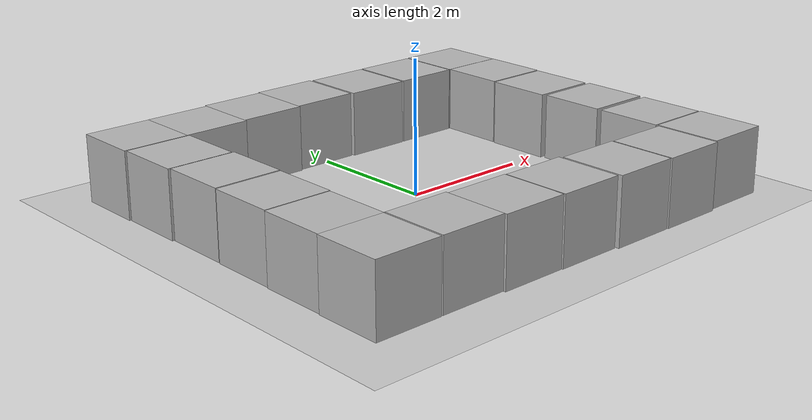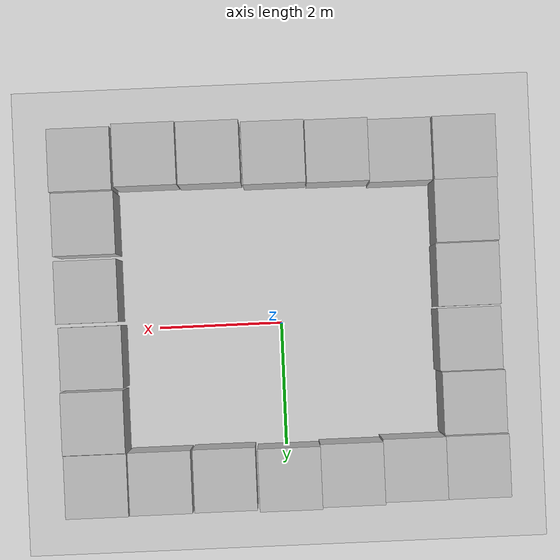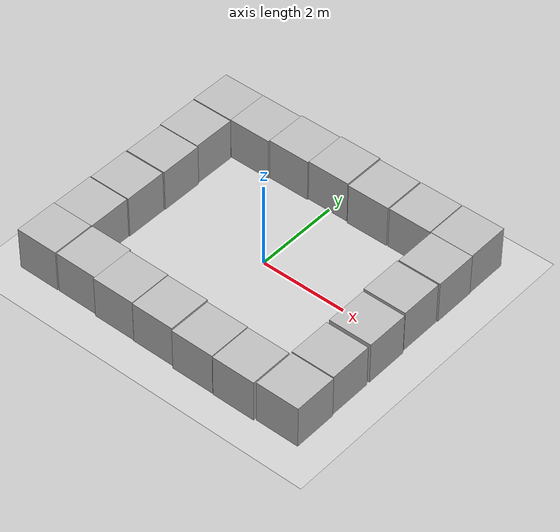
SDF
<sdf version="1.7">
 <world name="default">
  <light name="sun" type="directional">
   <pose>0 0 10 0 -0 0</pose>
   <diffuse>0.8 0.8 0.8 1</diffuse>
   <specular>0.2 0.2 0.2 1</specular>
   <attenuation>
    <range>1000</range>
    <constant>0.9</constant>
    <linear>0.01</linear>
    <quadratic>0.001</quadratic>
   </attenuation>
   <direction>-0.5 0.1 -0.9</direction>
   <spot><inner_angle>0</inner_angle><outer_angle>0</outer_angle><falloff>0</falloff></spot>
  </light>
  <model name="ground_plane">
   <static>1</static>
   <link name="link">
    <collision name="collision">
     <geometry><plane><normal>0 0 1</normal><size>100 100</size></plane></geometry>
     <surface><friction><ode><mu>100</mu><mu2>50</mu2></ode></friction></surface>
    </collision>
    <visual name="visual">
     <cast_shadows>0</cast_shadows>
     <geometry><plane><normal>0 0 1</normal><size>100 100</size></plane></geometry>
     <material>
      <script><uri>file://media/materials/scripts/gazebo.material</uri><name>Gazebo/Grey</name></script>
     </material>
    </visual>
   </link>
  </model>
  <gravity>0 0 -9.8</gravity>
  <magnetic_field>6e-06 2.3e-05 -4.2e-05</magnetic_field>
  <atmosphere type="adiabatic"/>
  <physics type="ode">
   <max_step_size>0.001</max_step_size>
   <real_time_factor>1</real_time_factor>
   <real_time_update_rate>1000</real_time_update_rate>
  </physics>
  <scene><ambient>0.4 0.4 0.4 1</ambient><background>0.7 0.7 0.7 1</background><shadows>1</shadows></scene>
  <spherical_coordinates>
   <surface_model>EARTH_WGS84</surface_model>
   <latitude_deg>0</latitude_deg>
   <longitude_deg>0</longitude_deg>
   <elevation>0</elevation>
   <heading_deg>0</heading_deg>
  </spherical_coordinates>
  <model name="test_box">
   <pose>-0.033295 2.47688 0.5 0 -0 7.4e-05</pose>
   <link name="link">
    <collision name="collision"><geometry><box><size>1 1 1</size></box></geometry></collision>
    <visual name="visual"><geometry><box><size>1 1 1</size></box></geometry></visual>
    <inertial>
     <inertia><ixx>1</ixx><ixy>0</ixy><ixz>0</ixz><iyy>1</iyy><iyz>0</iyz><izz>1</izz></inertia>
     <mass>1</mass>
    </inertial>
   </link>
  </model>
  <model name="test_box_clone">
   <pose>1.00205 2.44693 0.5 0 -0 0</pose>
   <link name="link">
    <collision name="collision"><geometry><box><size>1 1 1</size></box></geometry></collision>
    <visual name="visual"><geometry><box><size>1 1 1</size></box></geometry></visual>
    <inertial>
     <inertia><ixx>1</ixx><ixy>0</ixy><ixz>0</ixz><iyy>1</iyy><iyz>0</iyz><izz>1</izz></inertia>
     <mass>1</mass>
    </inertial>
   </link>
  </model>
  <model name="test_box_clone_clone">
   <pose>2.03264 2.4533 0.5 0 -0 0</pose>
   <link name="link">
    <collision name="collision"><geometry><box><size>1 1 1</size></box></geometry></collision>
    <visual name="visual"><geometry><box><size>1 1 1</size></box></geometry></visual>
    <inertial>
     <inertia><ixx>1</ixx><ixy>0</ixy><ixz>0</ixz><iyy>1</iyy><iyz>0</iyz><izz>1</izz></inertia>
     <mass>1</mass>
    </inertial>
   </link>
  </model>
  <model name="test_box_clone_clone_clone">
   <pose>3.05158 2.4619 0.5 0 -0 0</pose>
   <link name="link">
    <collision name="collision"><geometry><box><size>1 1 1</size></box></geometry></collision>
    <visual name="visual"><geometry><box><size>1 1 1</size></box></geometry></visual>
    <inertial>
     <inertia><ixx>1</ixx><ixy>0</ixy><ixz>0</ixz><iyy>1</iyy><iyz>0</iyz><izz>1</izz></inertia>
     <mass>1</mass>
    </inertial>
   </link>
  </model>
  <model name="test_box_clone_clone_clone_clone">
   <pose>3.06256 1.45675 0.5 0 -0 0</pose>
   <link name="link">
    <collision name="collision"><geometry><box><size>1 1 1</size></box></geometry></collision>
    <visual name="visual"><geometry><box><size>1 1 1</size></box></geometry></visual>
    <inertial>
     <inertia><ixx>1</ixx><ixy>0</ixy><ixz>0</ixz><iyy>1</iyy><iyz>0</iyz><izz>1</izz></inertia>
     <mass>1</mass>
    </inertial>
   </link>
  </model>
  <model name="test_box_clone_clone_clone_clone_clone">
   <pose>3.04627 0.423765 0.5 0 -0 0</pose>
   <link name="link">
    <collision name="collision"><geometry><box><size>1 1 1</size></box></geometry></collision>
    <visual name="visual"><geometry><box><size>1 1 1</size></box></geometry></visual>
    <inertial>
     <inertia><ixx>1</ixx><ixy>0</ixy><ixz>0</ixz><iyy>1</iyy><iyz>0</iyz><izz>1</izz></inertia>
     <mass>1</mass>
    </inertial>
   </link>
  </model>
  <model name="test_box_clone_clone_clone_clone_clone_clone">
   <pose>3.08138 -0.634212 0.5 0 -0 0</pose>
   <link name="link">
    <collision name="collision"><geometry><box><size>1 1 1</size></box></geometry></collision>
    <visual name="visual"><geometry><box><size>1 1 1</size></box></geometry></visual>
    <inertial>
     <inertia><ixx>1</ixx><ixy>0</ixy><ixz>0</ixz><iyy>1</iyy><iyz>0</iyz><izz>1</izz></inertia>
     <mass>1</mass>
    </inertial>
   </link>
  </model>
  <model name="test_box_clone_clone_clone_clone_clone_clone_clone">
   <pose>3.0833 -1.71248 0.5 0 -0 0</pose>
   <link name="link">
    <collision name="collision"><geometry><box><size>1 1 1</size></box></geometry></collision>
    <visual name="visual"><geometry><box><size>1 1 1</size></box></geometry></visual>
    <inertial>
     <inertia><ixx>1</ixx><ixy>0</ixy><ixz>0</ixz><iyy>1</iyy><iyz>0</iyz><izz>1</izz></inertia>
     <mass>1</mass>
    </inertial>
   </link>
  </model>
  <model name="test_box_clone_clone_clone_clone_clone_clone_clone_clone">
   <pose>3.10482 -2.73482 0.5 0 -0 0</pose>
   <link name="link">
    <collision name="collision"><geometry><box><size>1 1 1</size></box></geometry></collision>
    <visual name="visual"><geometry><box><size>1 1 1</size></box></geometry></visual>
    <inertial>
     <inertia><ixx>1</ixx><ixy>0</ixy><ixz>0</ixz><iyy>1</iyy><iyz>0</iyz><izz>1</izz></inertia>
     <mass>1</mass>
    </inertial>
   </link>
  </model>
  <model name="test_box_clone_clone_clone_clone_clone_clone_clone_clone_clone">
   <pose>2.07296 -2.77287 0.5 0 -0 0</pose>
   <link name="link">
    <collision name="collision"><geometry><box><size>1 1 1</size></box></geometry></collision>
    <visual name="visual"><geometry><box><size>1 1 1</size></box></geometry></visual>
    <inertial>
     <inertia><ixx>1</ixx><ixy>0</ixy><ixz>0</ixz><iyy>1</iyy><iyz>0</iyz><izz>1</izz></inertia>
     <mass>1</mass>
    </inertial>
   </link>
  </model>
  <model name="test_box_clone_clone_clone_clone_clone_clone_clone_clone_clone_clone">
   <pose>1.0536 -2.76267 0.5 0 -0 0</pose>
   <link name="link">
    <collision name="collision"><geometry><box><size>1 1 1</size></box></geometry></collision>
    <visual name="visual"><geometry><box><size>1 1 1</size></box></geometry></visual>
    <inertial>
     <inertia><ixx>1</ixx><ixy>0</ixy><ixz>0</ixz><iyy>1</iyy><iyz>0</iyz><izz>1</izz></inertia>
     <mass>1</mass>
    </inertial>
   </link>
  </model>
  <model name="test_box_clone_clone_clone_clone_clone_clone_clone_clone_clone_clone_clone">
   <pose>0.019515 -2.71993 0.5 0 -0 0</pose>
   <link name="link">
    <collision name="collision"><geometry><box><size>1 1 1</size></box></geometry></collision>
    <visual name="visual"><geometry><box><size>1 1 1</size></box></geometry></visual>
    <inertial>
     <inertia><ixx>1</ixx><ixy>0</ixy><ixz>0</ixz><iyy>1</iyy><iyz>0</iyz><izz>1</izz></inertia>
     <mass>1</mass>
    </inertial>
   </link>
  </model>
  <model name="test_box_clone_clone_clone_clone_clone_clone_clone_clone_clone_clone_clone_clone">
   <pose>-0.995389 -2.70628 0.5 0 -0 0</pose>
   <link name="link">
    <collision name="collision"><geometry><box><size>1 1 1</size></box></geometry></collision>
    <visual name="visual"><geometry><box><size>1 1 1</size></box></geometry></visual>
    <inertial>
     <inertia><ixx>1</ixx><ixy>0</ixy><ixz>0</ixz><iyy>1</iyy><iyz>0</iyz><izz>1</izz></inertia>
     <mass>1</mass>
    </inertial>
   </link>
  </model>
  <model name="test_box_clone_clone_clone_clone_clone_clone_clone_clone_clone_clone_clone_clone_clone">
   <pose>-1.99539 -2.67027 0.5 0 -0 -1e-06</pose>
   <link name="link">
    <collision name="collision"><geometry><box><size>1 1 1</size></box></geometry></collision>
    <visual name="visual"><geometry><box><size>1 1 1</size></box></geometry></visual>
    <inertial>
     <inertia><ixx>1</ixx><ixy>0</ixy><ixz>0</ixz><iyy>1</iyy><iyz>0</iyz><izz>1</izz></inertia>
     <mass>1</mass>
    </inertial>
   </link>
  </model>
  <model name="test_box_clone_clone_clone_clone_clone_clone_clone_clone_clone_clone_clone_clone_clone_clone">
   <pose>-3.0223 -2.6761 0.5 -0 -0 -0.000108</pose>
   <link name="link">
    <collision name="collision"><geometry><box><size>1 1 1</size></box></geometry></collision>
    <visual name="visual"><geometry><box><size>1 1 1</size></box></geometry></visual>
    <inertial>
     <inertia><ixx>1</ixx><ixy>0</ixy><ixz>0</ixz><iyy>1</iyy><iyz>0</iyz><izz>1</izz></inertia>
     <mass>1</mass>
    </inertial>
   </link>
  </model>
  <model name="test_box_clone_clone_clone_clone_clone_clone_clone_clone_clone_clone_clone_clone_clone_clone_clone">
   <pose>-3.01156 -1.67609 0.5 0 0 -0.000108</pose>
   <link name="link">
    <collision name="collision"><geometry><box><size>1 1 1</size></box></geometry></collision>
    <visual name="visual"><geometry><box><size>1 1 1</size></box></geometry></visual>
    <inertial>
     <inertia><ixx>1</ixx><ixy>0</ixy><ixz>0</ixz><iyy>1</iyy><iyz>0</iyz><izz>1</izz></inertia>
     <mass>1</mass>
    </inertial>
   </link>
  </model>
  <model name="test_box_clone_clone_clone_clone_clone_clone_clone_clone_clone_clone_clone_clone_clone_clone_clone_clone">
   <pose>-2.99738 -0.658435 0.5 0 -0 -0.000108</pose>
   <link name="link">
    <collision name="collision"><geometry><box><size>1 1 1</size></box></geometry></collision>
    <visual name="visual"><geometry><box><size>1 1 1</size></box></geometry></visual>
    <inertial>
     <inertia><ixx>1</ixx><ixy>0</ixy><ixz>0</ixz><iyy>1</iyy><iyz>0</iyz><izz>1</izz></inertia>
     <mass>1</mass>
    </inertial>
   </link>
  </model>
  <model name="test_box_clone_clone_clone_clone_clone_clone_clone_clone_clone_clone_clone_clone_clone_clone_clone_clone_clone">
   <pose>-2.98585 0.369048 0.5 0 -0 -0.000108</pose>
   <link name="link">
    <collision name="collision"><geometry><box><size>1 1 1</size></box></geometry></collision>
    <visual name="visual"><geometry><box><size>1 1 1</size></box></geometry></visual>
    <inertial>
     <inertia><ixx>1</ixx><ixy>0</ixy><ixz>0</ixz><iyy>1</iyy><iyz>0</iyz><izz>1</izz></inertia>
     <mass>1</mass>
    </inertial>
   </link>
  </model>
  <model name="test_box_clone_clone_clone_clone_clone_clone_clone_clone_clone_clone_clone_clone_clone_clone_clone_clone_clone_clone">
   <pose>-3.01425 1.38375 0.5 0 -0 -0.000108</pose>
   <link name="link">
    <collision name="collision"><geometry><box><size>1 1 1</size></box></geometry></collision>
    <visual name="visual"><geometry><box><size>1 1 1</size></box></geometry></visual>
    <inertial>
     <inertia><ixx>1</ixx><ixy>0</ixy><ixz>0</ixz><iyy>1</iyy><iyz>0</iyz><izz>1</izz></inertia>
     <mass>1</mass>
    </inertial>
   </link>
  </model>
  <model name="test_box_clone_clone_clone_clone_clone_clone_clone_clone_clone_clone_clone_clone_clone_clone_clone_clone_clone_clone_clone">
   <pose>-3.03336 2.40529 0.499996 3e-06 -4e-06 7.3e-05</pose>
   <link name="link">
    <collision name="collision"><geometry><box><size>1 1 1</size></box></geometry></collision>
    <visual name="visual"><geometry><box><size>1 1 1</size></box></geometry></visual>
    <inertial>
     <inertia><ixx>1</ixx><ixy>0</ixy><ixz>0</ixz><iyy>1</iyy><iyz>0</iyz><izz>1</izz></inertia>
     <mass>1</mass>
    </inertial>
   </link>
  </model>
  <model name="test_box_clone_clone_clone_clone_clone_clone_clone_clone_clone_clone_clone_clone_clone_clone_clone_clone_clone_clone_clone_clone">
   <pose>-2.03335 2.40868 0.5 0 -0 7.3e-05</pose>
   <link name="link">
    <collision name="collision"><geometry><box><size>1 1 1</size></box></geometry></collision>
    <visual name="visual"><geometry><box><size>1 1 1</size></box></geometry></visual>
    <inertial>
     <inertia><ixx>1</ixx><ixy>0</ixy><ixz>0</ixz><iyy>1</iyy><iyz>0</iyz><izz>1</izz></inertia>
     <mass>1</mass>
    </inertial>
   </link>
  </model>
  <model name="test_box_clone_clone_clone_clone_clone_clone_clone_clone_clone_clone_clone_clone_clone_clone_clone_clone_clone_clone_clone_clone_clone">
   <pose>-1.03333 2.44681 0.5 0 -0 7.2e-05</pose>
   <link name="link">
    <collision name="collision"><geometry><box><size>1 1 1</size></box></geometry></collision>
    <visual name="visual"><geometry><box><size>1 1 1</size></box></geometry></visual>
    <inertial>
     <inertia><ixx>1</ixx><ixy>0</ixy><ixz>0</ixz><iyy>1</iyy><iyz>0</iyz><izz>1</izz></inertia>
     <mass>1</mass>
    </inertial>
   </link>
  </model>
 </world>
</sdf>
